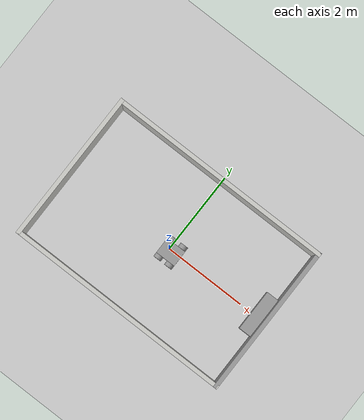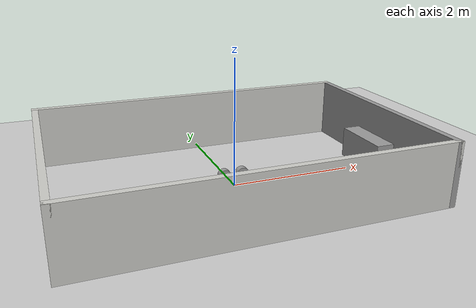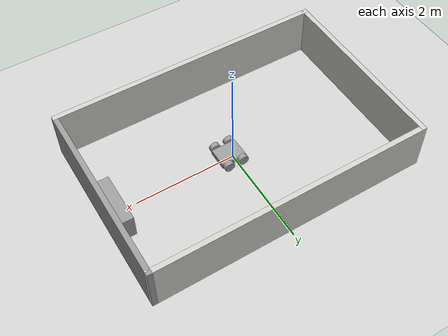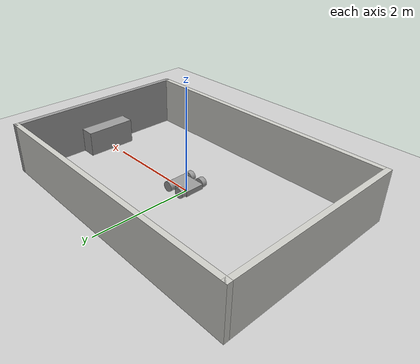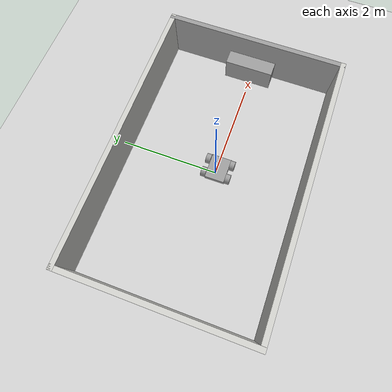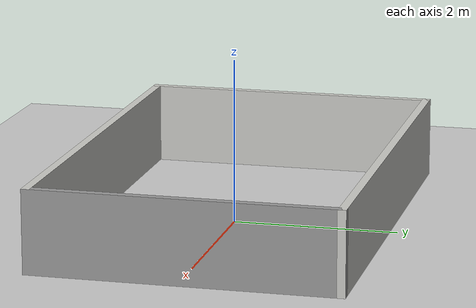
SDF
<sdf version="1.6">
 <world name="default">
  <light name="sun" type="directional">
   <pose>0 0 10 0 -0 0</pose>
   <diffuse>0.8 0.8 0.8 1</diffuse>
   <specular>0.2 0.2 0.2 1</specular>
   <attenuation>
    <range>1000</range>
    <constant>0.9</constant>
    <linear>0.01</linear>
    <quadratic>0.001</quadratic>
   </attenuation>
   <direction>-0.5 0.1 -0.9</direction>
  </light>
  <model name="ground_plane">
   <static>1</static>
   <link name="link">
    <collision name="collision">
     <geometry><plane><normal>0 0 1</normal><size>100 100</size></plane></geometry>
     <surface>
      <contact><collide_bitmask>65535</collide_bitmask></contact>
      <friction><ode><mu>100</mu><mu2>50</mu2></ode></friction>
     </surface>
    </collision>
    <visual name="visual">
     <cast_shadows>0</cast_shadows>
     <geometry><plane><normal>0 0 1</normal><size>100 100</size></plane></geometry>
     <material>
      <script><uri>file://media/materials/scripts/gazebo.material</uri><name>Gazebo/Grey</name></script>
     </material>
    </visual>
   </link>
  </model>
  <gravity>0 0 -9.8</gravity>
  <magnetic_field>6e-06 2.3e-05 -4.2e-05</magnetic_field>
  <atmosphere type="adiabatic"/>
  <physics name="default_physics" default="0" type="ode">
   <max_step_size>0.001</max_step_size>
   <real_time_factor>1</real_time_factor>
   <real_time_update_rate>1000</real_time_update_rate>
  </physics>
  <scene><ambient>0.4 0.4 0.4 1</ambient><background>0.7 0.7 0.7 1</background><shadows>1</shadows></scene>
  <spherical_coordinates>
   <surface_model>EARTH_WGS84</surface_model>
   <latitude_deg>0</latitude_deg>
   <longitude_deg>0</longitude_deg>
   <elevation>0</elevation>
   <heading_deg>0</heading_deg>
  </spherical_coordinates>
  <model name="Arena">
   <link name="Wall_11">
    <pose>0 -1.8 0 0 -0 0</pose>
    <visual name="Wall_11_Visual">
     <pose>0 0 0.5 0 -0 0</pose>
     <geometry><box><size>5.5 0.1 1</size></box></geometry>
     <material>
      <script><uri>file://media/materials/scripts/gazebo.material</uri><name>Gazebo/CeilingTiled</name></script>
      <ambient>1 1 1 1</ambient>
      <shader type="pixel"/>
     </material>
     <meta><layer>0</layer></meta>
    </visual>
    <collision name="Wall_11_Collision">
     <pose>0 0 0.5 0 -0 0</pose>
     <geometry><box><size>5.5 0.1 1</size></box></geometry>
     <surface>
      <friction>
       <ode><mu>1</mu><mu2>1</mu2><fdir1>0 0 0</fdir1><slip1>0</slip1><slip2>0</slip2></ode>
       <torsional>
        <coefficient>1</coefficient>
        <patch_radius>0</patch_radius>
        <surface_radius>0</surface_radius>
        <use_patch_radius>1</use_patch_radius>
        <ode><slip>0</slip></ode>
       </torsional>
      </friction>
      <bounce><restitution_coefficient>0</restitution_coefficient><threshold>1e+06</threshold></bounce>
      <contact>
       <collide_without_contact>0</collide_without_contact>
       <collide_without_contact_bitmask>1</collide_without_contact_bitmask>
       <collide_bitmask>1</collide_bitmask>
       <ode>
        <soft_cfm>0</soft_cfm>
        <soft_erp>0.2</soft_erp>
        <kp>1e+13</kp>
        <kd>1</kd>
        <max_vel>0.01</max_vel>
        <min_depth>0</min_depth>
       </ode>
       <bullet>
        <split_impulse>1</split_impulse>
        <split_impulse_penetration_threshold>-0.01</split_impulse_penetration_threshold>
        <soft_cfm>0</soft_cfm>
        <soft_erp>0.2</soft_erp>
        <kp>1e+13</kp>
        <kd>1</kd>
       </bullet>
      </contact>
     </surface>
    </collision>
   </link>
   <link name="Wall_12">
    <pose>2.7 0 0 0 -0 1.5708</pose>
    <visual name="Wall_12_Visual">
     <pose>0 0 0.5 0 -0 0</pose>
     <geometry><box><size>3.7 0.1 1</size></box></geometry>
     <material>
      <script><uri>file://media/materials/scripts/gazebo.material</uri><name>Gazebo/Grey</name></script>
      <ambient>1 1 1 1</ambient>
      <shader type="pixel"/>
     </material>
     <meta><layer>0</layer></meta>
    </visual>
    <collision name="Wall_12_Collision">
     <pose>0 0 0.5 0 -0 0</pose>
     <geometry><box><size>3.7 0.1 1</size></box></geometry>
     <surface>
      <friction>
       <ode><mu>1</mu><mu2>1</mu2><fdir1>0 0 0</fdir1><slip1>0</slip1><slip2>0</slip2></ode>
       <torsional>
        <coefficient>1</coefficient>
        <patch_radius>0</patch_radius>
        <surface_radius>0</surface_radius>
        <use_patch_radius>1</use_patch_radius>
        <ode><slip>0</slip></ode>
       </torsional>
      </friction>
      <bounce><restitution_coefficient>0</restitution_coefficient><threshold>1e+06</threshold></bounce>
      <contact>
       <collide_without_contact>0</collide_without_contact>
       <collide_without_contact_bitmask>1</collide_without_contact_bitmask>
       <collide_bitmask>1</collide_bitmask>
       <ode>
        <soft_cfm>0</soft_cfm>
        <soft_erp>0.2</soft_erp>
        <kp>1e+13</kp>
        <kd>1</kd>
        <max_vel>0.01</max_vel>
        <min_depth>0</min_depth>
       </ode>
       <bullet>
        <split_impulse>1</split_impulse>
        <split_impulse_penetration_threshold>-0.01</split_impulse_penetration_threshold>
        <soft_cfm>0</soft_cfm>
        <soft_erp>0.2</soft_erp>
        <kp>1e+13</kp>
        <kd>1</kd>
       </bullet>
      </contact>
     </surface>
    </collision>
   </link>
   <link name="Wall_13">
    <pose>0 1.8 0 0 -0 3.14159</pose>
    <visual name="Wall_13_Visual">
     <pose>0 0 0.5 0 -0 0</pose>
     <geometry><box><size>5.5 0.1 1</size></box></geometry>
     <material>
      <script><uri>file://media/materials/scripts/gazebo.material</uri><name>Gazebo/CeilingTiled</name></script>
      <ambient>1 1 1 1</ambient>
      <shader type="pixel"/>
     </material>
     <meta><layer>0</layer></meta>
    </visual>
    <collision name="Wall_13_Collision">
     <pose>0 0 0.5 0 -0 0</pose>
     <geometry><box><size>5.5 0.1 1</size></box></geometry>
     <surface>
      <friction>
       <ode><mu>1</mu><mu2>1</mu2><fdir1>0 0 0</fdir1><slip1>0</slip1><slip2>0</slip2></ode>
       <torsional>
        <coefficient>1</coefficient>
        <patch_radius>0</patch_radius>
        <surface_radius>0</surface_radius>
        <use_patch_radius>1</use_patch_radius>
        <ode><slip>0</slip></ode>
       </torsional>
      </friction>
      <bounce><restitution_coefficient>0</restitution_coefficient><threshold>1e+06</threshold></bounce>
      <contact>
       <collide_without_contact>0</collide_without_contact>
       <collide_without_contact_bitmask>1</collide_without_contact_bitmask>
       <collide_bitmask>1</collide_bitmask>
       <ode>
        <soft_cfm>0</soft_cfm>
        <soft_erp>0.2</soft_erp>
        <kp>1e+13</kp>
        <kd>1</kd>
        <max_vel>0.01</max_vel>
        <min_depth>0</min_depth>
       </ode>
       <bullet>
        <split_impulse>1</split_impulse>
        <split_impulse_penetration_threshold>-0.01</split_impulse_penetration_threshold>
        <soft_cfm>0</soft_cfm>
        <soft_erp>0.2</soft_erp>
        <kp>1e+13</kp>
        <kd>1</kd>
       </bullet>
      </contact>
     </surface>
    </collision>
   </link>
   <link name="Wall_14">
    <pose>-2.7 0 0 0 0 -1.5708</pose>
    <visual name="Wall_14_Visual">
     <pose>0 0 0.5 0 -0 0</pose>
     <geometry><box><size>3.7 0.1 1</size></box></geometry>
     <material>
      <script><uri>file://media/materials/scripts/gazebo.material</uri><name>Gazebo/CeilingTiled</name></script>
      <ambient>1 1 1 1</ambient>
      <shader type="pixel"/>
     </material>
     <meta><layer>0</layer></meta>
    </visual>
    <collision name="Wall_14_Collision">
     <pose>0 0 0.5 0 -0 0</pose>
     <geometry><box><size>3.7 0.1 1</size></box></geometry>
     <surface>
      <friction>
       <ode><mu>1</mu><mu2>1</mu2><fdir1>0 0 0</fdir1><slip1>0</slip1><slip2>0</slip2></ode>
       <torsional>
        <coefficient>1</coefficient>
        <patch_radius>0</patch_radius>
        <surface_radius>0</surface_radius>
        <use_patch_radius>1</use_patch_radius>
        <ode><slip>0</slip></ode>
       </torsional>
      </friction>
      <bounce><restitution_coefficient>0</restitution_coefficient><threshold>1e+06</threshold></bounce>
      <contact>
       <collide_without_contact>0</collide_without_contact>
       <collide_without_contact_bitmask>1</collide_without_contact_bitmask>
       <collide_bitmask>1</collide_bitmask>
       <ode>
        <soft_cfm>0</soft_cfm>
        <soft_erp>0.2</soft_erp>
        <kp>1e+13</kp>
        <kd>1</kd>
        <max_vel>0.01</max_vel>
        <min_depth>0</min_depth>
       </ode>
       <bullet>
        <split_impulse>1</split_impulse>
        <split_impulse_penetration_threshold>-0.01</split_impulse_penetration_threshold>
        <soft_cfm>0</soft_cfm>
        <soft_erp>0.2</soft_erp>
        <kp>1e+13</kp>
        <kd>1</kd>
       </bullet>
      </contact>
     </surface>
    </collision>
   </link>
   <link name="link_2">
    <inertial>
     <mass>1</mass>
     <inertia>
      <ixx>0.166667</ixx>
      <ixy>0</ixy>
      <ixz>0</ixz>
      <iyy>0.166667</iyy>
      <iyz>0</iyz>
      <izz>0.166667</izz>
     </inertia>
    </inertial>
    <pose>2.5 0 0.25 0 -0 0</pose>
    <visual name="visual">
     <geometry><box><size>0.3 1 0.5</size></box></geometry>
     <material>
      <lighting>1</lighting>
      <script><uri>file://media/materials/scripts/gazebo.material</uri><name>Gazebo/Grey</name></script>
      <shader type="pixel"><normal_map>__default__</normal_map></shader>
      <ambient>0.3 0.3 0.3 1</ambient>
      <diffuse>0.7 0.7 0.7 1</diffuse>
      <specular>0.01 0.01 0.01 1</specular>
      <emissive>0 0 0 1</emissive>
     </material>
    </visual>
    <collision name="collision">
     <geometry><box><size>0.3 1 0.5</size></box></geometry>
     <surface>
      <friction>
       <ode><mu>1</mu><mu2>1</mu2><fdir1>0 0 0</fdir1><slip1>0</slip1><slip2>0</slip2></ode>
       <torsional>
        <coefficient>1</coefficient>
        <patch_radius>0</patch_radius>
        <surface_radius>0</surface_radius>
        <use_patch_radius>1</use_patch_radius>
        <ode><slip>0</slip></ode>
       </torsional>
      </friction>
      <bounce><restitution_coefficient>0</restitution_coefficient><threshold>1e+06</threshold></bounce>
      <contact>
       <collide_without_contact>0</collide_without_contact>
       <collide_without_contact_bitmask>1</collide_without_contact_bitmask>
       <collide_bitmask>1</collide_bitmask>
       <ode>
        <soft_cfm>0</soft_cfm>
        <soft_erp>0.2</soft_erp>
        <kp>1e+13</kp>
        <kd>1</kd>
        <max_vel>0.01</max_vel>
        <min_depth>0</min_depth>
       </ode>
       <bullet>
        <split_impulse>1</split_impulse>
        <split_impulse_penetration_threshold>-0.01</split_impulse_penetration_threshold>
        <soft_cfm>0</soft_cfm>
        <soft_erp>0.2</soft_erp>
        <kp>1e+13</kp>
        <kd>1</kd>
       </bullet>
      </contact>
     </surface>
    </collision>
   </link>
   <static>1</static>
   <pose>-0.069507 0.062673 0 0 -0 0</pose>
  </model>
  <model name="Rover1">
   <link name="link_0">
    <inertial>
     <mass>1</mass>
     <inertia>
      <ixx>0.166667</ixx>
      <ixy>0</ixy>
      <ixz>0</ixz>
      <iyy>0.166667</iyy>
      <iyz>0</iyz>
      <izz>0.166667</izz>
     </inertia>
    </inertial>
    <pose>-0 -0 1e-06 0 -0 0</pose>
    <visual name="visual">
     <geometry><box><size>0.5 0.4 0.1</size></box></geometry>
     <material>
      <lighting>1</lighting>
      <script><uri>file://media/materials/scripts/gazebo.material</uri><name>Gazebo/Grey</name></script>
      <shader type="pixel"><normal_map>__default__</normal_map></shader>
      <ambient>0.3 0.3 0.3 1</ambient>
      <diffuse>0.7 0.7 0.7 1</diffuse>
      <specular>0.01 0.01 0.01 1</specular>
      <emissive>0 0 0 1</emissive>
     </material>
    </visual>
    <collision name="collision">
     <geometry><box><size>0.5 0.4 0.1</size></box></geometry>
     <surface>
      <friction>
       <ode><mu>1</mu><mu2>1</mu2><fdir1>0 0 0</fdir1><slip1>0</slip1><slip2>0</slip2></ode>
       <torsional>
        <coefficient>1</coefficient>
        <patch_radius>0</patch_radius>
        <surface_radius>0</surface_radius>
        <use_patch_radius>1</use_patch_radius>
        <ode><slip>0</slip></ode>
       </torsional>
      </friction>
      <bounce><restitution_coefficient>0</restitution_coefficient><threshold>1e+06</threshold></bounce>
      <contact>
       <collide_without_contact>0</collide_without_contact>
       <collide_without_contact_bitmask>1</collide_without_contact_bitmask>
       <collide_bitmask>1</collide_bitmask>
       <ode>
        <soft_cfm>0</soft_cfm>
        <soft_erp>0.2</soft_erp>
        <kp>1e+13</kp>
        <kd>1</kd>
        <max_vel>0.01</max_vel>
        <min_depth>0</min_depth>
       </ode>
       <bullet>
        <split_impulse>1</split_impulse>
        <split_impulse_penetration_threshold>-0.01</split_impulse_penetration_threshold>
        <soft_cfm>0</soft_cfm>
        <soft_erp>0.2</soft_erp>
        <kp>1e+13</kp>
        <kd>1</kd>
       </bullet>
      </contact>
     </surface>
    </collision>
   </link>
   <link name="link_1">
    <inertial>
     <mass>1</mass>
     <inertia><ixx>0.145833</ixx><ixy>0</ixy><ixz>0</ixz><iyy>0.145833</iyy><iyz>0</iyz><izz>0.125</izz></inertia>
    </inertial>
    <pose>-0.15 -0.25001 0.020366 1.5707 -0 0</pose>
    <visual name="visual">
     <geometry><cylinder><radius>0.1</radius><length>0.1</length></cylinder></geometry>
     <material>
      <lighting>1</lighting>
      <script><uri>file://media/materials/scripts/gazebo.material</uri><name>Gazebo/Grey</name></script>
      <shader type="pixel"><normal_map>__default__</normal_map></shader>
      <ambient>0.3 0.3 0.3 1</ambient>
      <diffuse>0.7 0.7 0.7 1</diffuse>
      <specular>0.01 0.01 0.01 1</specular>
      <emissive>0 0 0 1</emissive>
     </material>
    </visual>
    <collision name="collision">
     <geometry><cylinder><radius>0.1</radius><length>0.1</length></cylinder></geometry>
     <surface>
      <friction>
       <ode><mu>1</mu><mu2>1</mu2><fdir1>0 0 0</fdir1><slip1>0</slip1><slip2>0</slip2></ode>
       <torsional>
        <coefficient>1</coefficient>
        <patch_radius>0</patch_radius>
        <surface_radius>0</surface_radius>
        <use_patch_radius>1</use_patch_radius>
        <ode><slip>0</slip></ode>
       </torsional>
      </friction>
      <bounce><restitution_coefficient>0</restitution_coefficient><threshold>1e+06</threshold></bounce>
      <contact>
       <collide_without_contact>0</collide_without_contact>
       <collide_without_contact_bitmask>1</collide_without_contact_bitmask>
       <collide_bitmask>1</collide_bitmask>
       <ode>
        <soft_cfm>0</soft_cfm>
        <soft_erp>0.2</soft_erp>
        <kp>1e+13</kp>
        <kd>1</kd>
        <max_vel>0.01</max_vel>
        <min_depth>0</min_depth>
       </ode>
       <bullet>
        <split_impulse>1</split_impulse>
        <split_impulse_penetration_threshold>-0.01</split_impulse_penetration_threshold>
        <soft_cfm>0</soft_cfm>
        <soft_erp>0.2</soft_erp>
        <kp>1e+13</kp>
        <kd>1</kd>
       </bullet>
      </contact>
     </surface>
    </collision>
   </link>
   <link name="link_1_clone">
    <inertial>
     <mass>1</mass>
     <inertia><ixx>0.145833</ixx><ixy>0</ixy><ixz>0</ixz><iyy>0.145833</iyy><iyz>0</iyz><izz>0.125</izz></inertia>
    </inertial>
    <pose>0.15 -0.25001 0.020366 1.5707 -0 0</pose>
    <visual name="visual">
     <geometry><cylinder><radius>0.1</radius><length>0.1</length></cylinder></geometry>
     <material>
      <lighting>1</lighting>
      <script><uri>file://media/materials/scripts/gazebo.material</uri><name>Gazebo/Grey</name></script>
      <shader type="pixel"><normal_map>__default__</normal_map></shader>
      <ambient>0.3 0.3 0.3 1</ambient>
      <diffuse>0.7 0.7 0.7 1</diffuse>
      <specular>0.01 0.01 0.01 1</specular>
      <emissive>0 0 0 1</emissive>
     </material>
    </visual>
    <collision name="collision">
     <geometry><cylinder><radius>0.1</radius><length>0.1</length></cylinder></geometry>
     <surface>
      <friction>
       <ode><mu>1</mu><mu2>1</mu2><fdir1>0 0 0</fdir1><slip1>0</slip1><slip2>0</slip2></ode>
       <torsional>
        <coefficient>1</coefficient>
        <patch_radius>0</patch_radius>
        <surface_radius>0</surface_radius>
        <use_patch_radius>1</use_patch_radius>
        <ode><slip>0</slip></ode>
       </torsional>
      </friction>
      <bounce><restitution_coefficient>0</restitution_coefficient><threshold>1e+06</threshold></bounce>
      <contact>
       <collide_without_contact>0</collide_without_contact>
       <collide_without_contact_bitmask>1</collide_without_contact_bitmask>
       <collide_bitmask>1</collide_bitmask>
       <ode>
        <soft_cfm>0</soft_cfm>
        <soft_erp>0.2</soft_erp>
        <kp>1e+13</kp>
        <kd>1</kd>
        <max_vel>0.01</max_vel>
        <min_depth>0</min_depth>
       </ode>
       <bullet>
        <split_impulse>1</split_impulse>
        <split_impulse_penetration_threshold>-0.01</split_impulse_penetration_threshold>
        <soft_cfm>0</soft_cfm>
        <soft_erp>0.2</soft_erp>
        <kp>1e+13</kp>
        <kd>1</kd>
       </bullet>
      </contact>
     </surface>
    </collision>
   </link>
   <link name="link_1_clone_clone">
    <inertial>
     <mass>1</mass>
     <inertia><ixx>0.145833</ixx><ixy>0</ixy><ixz>0</ixz><iyy>0.145833</iyy><iyz>0</iyz><izz>0.125</izz></inertia>
    </inertial>
    <pose>-0.15 0.25001 0.020366 1.5707 -0 0</pose>
    <visual name="visual">
     <geometry><cylinder><radius>0.1</radius><length>0.1</length></cylinder></geometry>
     <material>
      <lighting>1</lighting>
      <script><uri>file://media/materials/scripts/gazebo.material</uri><name>Gazebo/Grey</name></script>
      <shader type="pixel"><normal_map>__default__</normal_map></shader>
      <ambient>0.3 0.3 0.3 1</ambient>
      <diffuse>0.7 0.7 0.7 1</diffuse>
      <specular>0.01 0.01 0.01 1</specular>
      <emissive>0 0 0 1</emissive>
     </material>
    </visual>
    <collision name="collision">
     <geometry><cylinder><radius>0.1</radius><length>0.1</length></cylinder></geometry>
     <surface>
      <friction>
       <ode><mu>1</mu><mu2>1</mu2><fdir1>0 0 0</fdir1><slip1>0</slip1><slip2>0</slip2></ode>
       <torsional>
        <coefficient>1</coefficient>
        <patch_radius>0</patch_radius>
        <surface_radius>0</surface_radius>
        <use_patch_radius>1</use_patch_radius>
        <ode><slip>0</slip></ode>
       </torsional>
      </friction>
      <bounce><restitution_coefficient>0</restitution_coefficient><threshold>1e+06</threshold></bounce>
      <contact>
       <collide_without_contact>0</collide_without_contact>
       <collide_without_contact_bitmask>1</collide_without_contact_bitmask>
       <collide_bitmask>1</collide_bitmask>
       <ode>
        <soft_cfm>0</soft_cfm>
        <soft_erp>0.2</soft_erp>
        <kp>1e+13</kp>
        <kd>1</kd>
        <max_vel>0.01</max_vel>
        <min_depth>0</min_depth>
       </ode>
       <bullet>
        <split_impulse>1</split_impulse>
        <split_impulse_penetration_threshold>-0.01</split_impulse_penetration_threshold>
        <soft_cfm>0</soft_cfm>
        <soft_erp>0.2</soft_erp>
        <kp>1e+13</kp>
        <kd>1</kd>
       </bullet>
      </contact>
     </surface>
    </collision>
   </link>
   <link name="link_1_clone_clone_clone">
    <inertial>
     <mass>1</mass>
     <inertia><ixx>0.145833</ixx><ixy>0</ixy><ixz>0</ixz><iyy>0.145833</iyy><iyz>0</iyz><izz>0.125</izz></inertia>
    </inertial>
    <pose>0.15 0.25001 0.020366 1.5707 -0 0</pose>
    <visual name="visual">
     <geometry><cylinder><radius>0.1</radius><length>0.1</length></cylinder></geometry>
     <material>
      <lighting>1</lighting>
      <script><uri>file://media/materials/scripts/gazebo.material</uri><name>Gazebo/Grey</name></script>
      <shader type="pixel"><normal_map>__default__</normal_map></shader>
      <ambient>0.3 0.3 0.3 1</ambient>
      <diffuse>0.7 0.7 0.7 1</diffuse>
      <specular>0.01 0.01 0.01 1</specular>
      <emissive>0 0 0 1</emissive>
     </material>
    </visual>
    <collision name="collision">
     <geometry><cylinder><radius>0.1</radius><length>0.1</length></cylinder></geometry>
     <surface>
      <friction>
       <ode><mu>1</mu><mu2>1</mu2><fdir1>0 0 0</fdir1><slip1>0</slip1><slip2>0</slip2></ode>
       <torsional>
        <coefficient>1</coefficient>
        <patch_radius>0</patch_radius>
        <surface_radius>0</surface_radius>
        <use_patch_radius>1</use_patch_radius>
        <ode><slip>0</slip></ode>
       </torsional>
      </friction>
      <bounce><restitution_coefficient>0</restitution_coefficient><threshold>1e+06</threshold></bounce>
      <contact>
       <collide_without_contact>0</collide_without_contact>
       <collide_without_contact_bitmask>1</collide_without_contact_bitmask>
       <collide_bitmask>1</collide_bitmask>
       <ode>
        <soft_cfm>0</soft_cfm>
        <soft_erp>0.2</soft_erp>
        <kp>1e+13</kp>
        <kd>1</kd>
        <max_vel>0.01</max_vel>
        <min_depth>0</min_depth>
       </ode>
       <bullet>
        <split_impulse>1</split_impulse>
        <split_impulse_penetration_threshold>-0.01</split_impulse_penetration_threshold>
        <soft_cfm>0</soft_cfm>
        <soft_erp>0.2</soft_erp>
        <kp>1e+13</kp>
        <kd>1</kd>
       </bullet>
      </contact>
     </surface>
    </collision>
   </link>
   <joint name="link_0_JOINT_2" type="revolute">
    <parent>link_0</parent>
    <child>link_1_clone_clone</child>
    <axis>
     <xyz>0 0 1</xyz>
     <use_parent_model_frame>0</use_parent_model_frame>
     <limit>
      <lower>-1.79769e+308</lower>
      <upper>1.79769e+308</upper>
      <effort>-1</effort>
      <velocity>-1</velocity>
     </limit>
     <dynamics>
      <spring_reference>0</spring_reference>
      <spring_stiffness>0</spring_stiffness>
      <damping>0</damping>
     </dynamics>
    </axis>
    <physics>
     <ode><limit><cfm>0</cfm><erp>0.2</erp></limit><suspension><cfm>0</cfm><erp>0.2</erp></suspension></ode>
    </physics>
   </joint>
   <joint name="link_0_JOINT_4" type="revolute">
    <parent>link_0</parent>
    <child>link_1</child>
    <axis>
     <xyz>0 0 1</xyz>
     <use_parent_model_frame>0</use_parent_model_frame>
     <limit>
      <lower>-1.79769e+308</lower>
      <upper>1.79769e+308</upper>
      <effort>-1</effort>
      <velocity>-1</velocity>
     </limit>
     <dynamics>
      <spring_reference>0</spring_reference>
      <spring_stiffness>0</spring_stiffness>
      <damping>0</damping>
     </dynamics>
    </axis>
    <physics>
     <ode><limit><cfm>0</cfm><erp>0.2</erp></limit><suspension><cfm>0</cfm><erp>0.2</erp></suspension></ode>
    </physics>
   </joint>
   <joint name="link_0_JOINT_5" type="revolute">
    <parent>link_0</parent>
    <child>link_1_clone</child>
    <axis>
     <xyz>0 0 1</xyz>
     <use_parent_model_frame>0</use_parent_model_frame>
     <limit>
      <lower>-1.79769e+308</lower>
      <upper>1.79769e+308</upper>
      <effort>-1</effort>
      <velocity>-1</velocity>
     </limit>
     <dynamics>
      <spring_reference>0</spring_reference>
      <spring_stiffness>0</spring_stiffness>
      <damping>0</damping>
     </dynamics>
    </axis>
    <physics>
     <ode><limit><cfm>0</cfm><erp>0.2</erp></limit><suspension><cfm>0</cfm><erp>0.2</erp></suspension></ode>
    </physics>
   </joint>
   <joint name="link_0_JOINT_6" type="revolute">
    <parent>link_0</parent>
    <child>link_1_clone_clone_clone</child>
    <axis>
     <xyz>0 0 1</xyz>
     <use_parent_model_frame>0</use_parent_model_frame>
     <limit>
      <lower>-1.79769e+308</lower>
      <upper>1.79769e+308</upper>
      <effort>-1</effort>
      <velocity>-1</velocity>
     </limit>
     <dynamics>
      <spring_reference>0</spring_reference>
      <spring_stiffness>0</spring_stiffness>
      <damping>0</damping>
     </dynamics>
    </axis>
    <physics>
     <ode><limit><cfm>0</cfm><erp>0.2</erp></limit><suspension><cfm>0</cfm><erp>0.2</erp></suspension></ode>
    </physics>
   </joint>
   <static>0</static>
   <pose>0.066311 -0.038672 0.079636 -0 1.7e-05 0.00683</pose>
  </model>
 </world>
</sdf>
